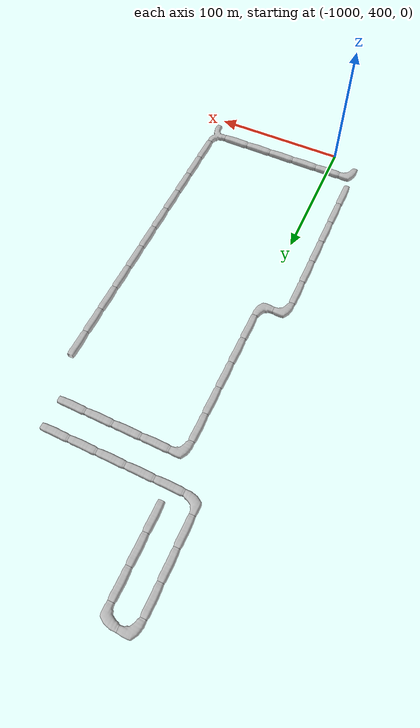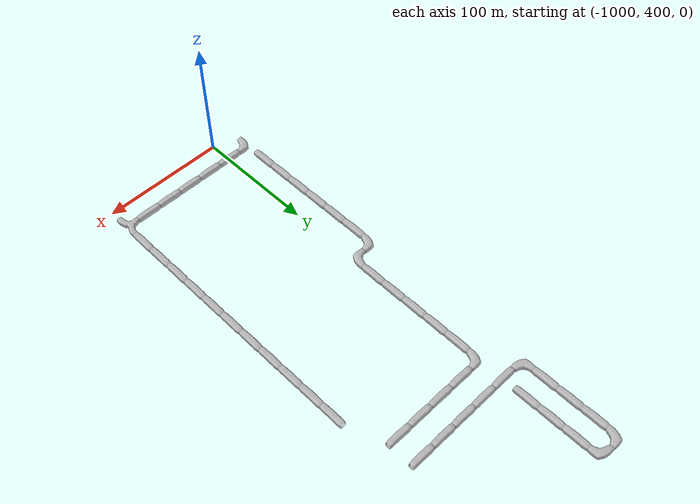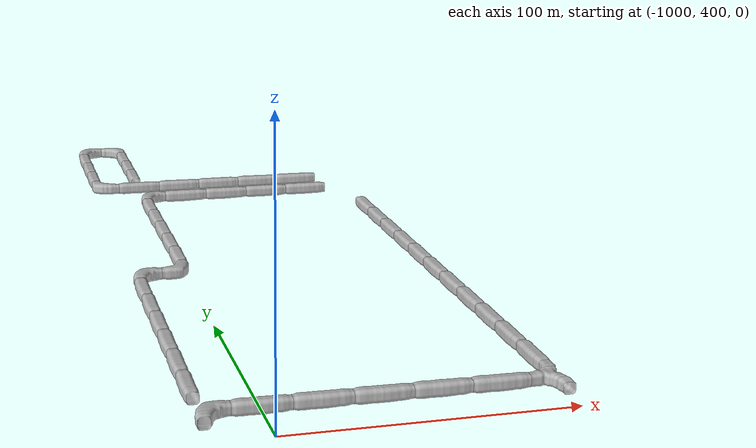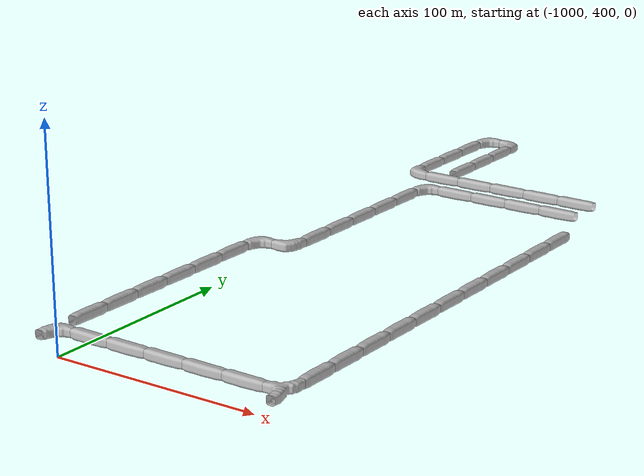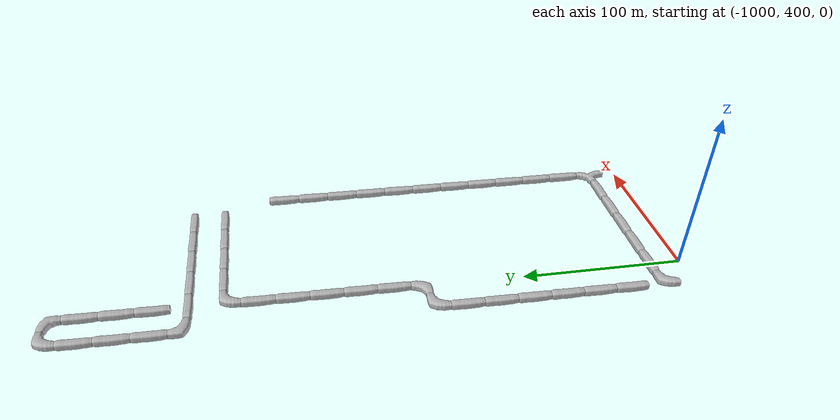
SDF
<sdf version="1.6">
 <world name="cave_16000_8">
  <include>
   <static>true</static>
   <name>cave_-45_32</name>
   <pose>-900 640 0 0 0 0.0</pose>
   <uri>model://cave_straight_20m</uri>
  </include>
  <include>
   <static>true</static>
   <name>cave_-45_31</name>
   <pose>-900 620 0 0 0 0.0</pose>
   <uri>model://cave_straight_20m</uri>
  </include>
  <include>
   <static>true</static>
   <name>cave_-45_30</name>
   <pose>-900 600 0 0 0 0.0</pose>
   <uri>model://cave_straight_20m</uri>
  </include>
  <include>
   <static>true</static>
   <name>cave_-45_29</name>
   <pose>-900 580 0 0 0 0.0</pose>
   <uri>model://cave_straight_20m</uri>
  </include>
  <include>
   <static>true</static>
   <name>cave_-45_28</name>
   <pose>-900 560 0 0 0 0.0</pose>
   <uri>model://cave_straight_20m</uri>
  </include>
  <include>
   <static>true</static>
   <name>cave_-45_27</name>
   <pose>-900 540 0 0 0 0.0</pose>
   <uri>model://cave_straight_20m</uri>
  </include>
  <include>
   <static>true</static>
   <name>cave_-45_26</name>
   <pose>-900 520 0 0 0 0.0</pose>
   <uri>model://cave_straight_20m</uri>
  </include>
  <include>
   <static>true</static>
   <name>cave_-45_25</name>
   <pose>-900 500 0 0 0 0.0</pose>
   <uri>model://cave_straight_20m</uri>
  </include>
  <include>
   <static>true</static>
   <name>cave_-45_24</name>
   <pose>-900 480 0 0 0 0.0</pose>
   <uri>model://cave_straight_20m</uri>
  </include>
  <include>
   <static>true</static>
   <name>cave_-45_23</name>
   <pose>-900 460 0 0 0 0.0</pose>
   <uri>model://cave_straight_20m</uri>
  </include>
  <include>
   <static>true</static>
   <name>cave_-45_22</name>
   <pose>-900 440 0 0 0 0.0</pose>
   <uri>model://cave_straight_20m</uri>
  </include>
  <include>
   <static>true</static>
   <name>cave_-45_21</name>
   <pose>-900 420 0 0 0 1.5707963267948966</pose>
   <uri>model://cave_3way_20m</uri>
  </include>
  <include>
   <static>true</static>
   <name>cave_-46_21</name>
   <pose>-920 420 0 0 0 1.5707963267948966</pose>
   <uri>model://cave_straight_20m</uri>
  </include>
  <include>
   <static>true</static>
   <name>cave_-47_21</name>
   <pose>-940 420 0 0 0 1.5707963267948966</pose>
   <uri>model://cave_straight_20m</uri>
  </include>
  <include>
   <static>true</static>
   <name>cave_-48_21</name>
   <pose>-960 420 0 0 0 1.5707963267948966</pose>
   <uri>model://cave_straight_20m</uri>
  </include>
  <include>
   <static>true</static>
   <name>cave_-49_21</name>
   <pose>-980 420 0 0 0 1.5707963267948966</pose>
   <uri>model://cave_straight_20m</uri>
  </include>
  <include>
   <static>true</static>
   <name>cave_-50_21</name>
   <pose>-1000 420 0 0 0 1.5707963267948966</pose>
   <uri>model://cave_straight_20m</uri>
  </include>
  <include>
   <static>true</static>
   <name>cave_-51_21</name>
   <pose>-1020 420 0 0 0 -1.5707963267948966</pose>
   <uri>model://cave_L_20m</uri>
  </include>
  <include>
   <static>true</static>
   <name>cave_-46_34</name>
   <pose>-920 680 0 0 0 1.5707963267948966</pose>
   <uri>model://cave_straight_20m</uri>
  </include>
  <include>
   <static>true</static>
   <name>cave_-47_34</name>
   <pose>-940 680 0 0 0 1.5707963267948966</pose>
   <uri>model://cave_straight_20m</uri>
  </include>
  <include>
   <static>true</static>
   <name>cave_-48_34</name>
   <pose>-960 680 0 0 0 1.5707963267948966</pose>
   <uri>model://cave_straight_20m</uri>
  </include>
  <include>
   <static>true</static>
   <name>cave_-49_34</name>
   <pose>-980 680 0 0 0 1.5707963267948966</pose>
   <uri>model://cave_straight_20m</uri>
  </include>
  <include>
   <static>true</static>
   <name>cave_-50_34</name>
   <pose>-1000 680 0 0 0 -1.5707963267948966</pose>
   <uri>model://cave_L_20m</uri>
  </include>
  <include>
   <static>true</static>
   <name>cave_-50_33</name>
   <pose>-1000 660 0 0 0 0.0</pose>
   <uri>model://cave_straight_20m</uri>
  </include>
  <include>
   <static>true</static>
   <name>cave_-50_32</name>
   <pose>-1000 640 0 0 0 0.0</pose>
   <uri>model://cave_straight_20m</uri>
  </include>
  <include>
   <static>true</static>
   <name>cave_-50_31</name>
   <pose>-1000 620 0 0 0 0.0</pose>
   <uri>model://cave_straight_20m</uri>
  </include>
  <include>
   <static>true</static>
   <name>cave_-50_30</name>
   <pose>-1000 600 0 0 0 0.0</pose>
   <uri>model://cave_straight_20m</uri>
  </include>
  <include>
   <static>true</static>
   <name>cave_-50_29</name>
   <pose>-1000 580 0 0 0 0.0</pose>
   <uri>model://cave_straight_20m</uri>
  </include>
  <include>
   <static>true</static>
   <name>cave_-50_28</name>
   <pose>-1000 560 0 0 0 1.5707963267948966</pose>
   <uri>model://cave_L_20m</uri>
  </include>
  <include>
   <static>true</static>
   <name>cave_-51_28</name>
   <pose>-1020 560 0 0 0 -1.5707963267948966</pose>
   <uri>model://cave_L_20m</uri>
  </include>
  <include>
   <static>true</static>
   <name>cave_-51_27</name>
   <pose>-1020 540 0 0 0 0.0</pose>
   <uri>model://cave_straight_20m</uri>
  </include>
  <include>
   <static>true</static>
   <name>cave_-51_26</name>
   <pose>-1020 520 0 0 0 0.0</pose>
   <uri>model://cave_straight_20m</uri>
  </include>
  <include>
   <static>true</static>
   <name>cave_-51_25</name>
   <pose>-1020 500 0 0 0 0.0</pose>
   <uri>model://cave_straight_20m</uri>
  </include>
  <include>
   <static>true</static>
   <name>cave_-51_24</name>
   <pose>-1020 480 0 0 0 0.0</pose>
   <uri>model://cave_straight_20m</uri>
  </include>
  <include>
   <static>true</static>
   <name>cave_-51_23</name>
   <pose>-1020 460 0 0 0 0.0</pose>
   <uri>model://cave_straight_20m</uri>
  </include>
  <include>
   <static>true</static>
   <name>cave_-51_22</name>
   <pose>-1020 440 0 0 0 0.0</pose>
   <uri>model://cave_straight_20m</uri>
  </include>
  <include>
   <static>true</static>
   <name>cave_-46_35</name>
   <pose>-920 700 0 0 0 1.5707963267948966</pose>
   <uri>model://cave_straight_20m</uri>
  </include>
  <include>
   <static>true</static>
   <name>cave_-47_35</name>
   <pose>-940 700 0 0 0 1.5707963267948966</pose>
   <uri>model://cave_straight_20m</uri>
  </include>
  <include>
   <static>true</static>
   <name>cave_-48_35</name>
   <pose>-960 700 0 0 0 1.5707963267948966</pose>
   <uri>model://cave_straight_20m</uri>
  </include>
  <include>
   <static>true</static>
   <name>cave_-49_35</name>
   <pose>-980 700 0 0 0 1.5707963267948966</pose>
   <uri>model://cave_straight_20m</uri>
  </include>
  <include>
   <static>true</static>
   <name>cave_-50_35</name>
   <pose>-1000 700 0 0 0 1.5707963267948966</pose>
   <uri>model://cave_straight_20m</uri>
  </include>
  <include>
   <static>true</static>
   <name>cave_-51_35</name>
   <pose>-1020 700 0 0 0 0.0</pose>
   <uri>model://cave_L_20m</uri>
  </include>
  <include>
   <static>true</static>
   <name>cave_-51_36</name>
   <pose>-1020 720 0 0 0 0.0</pose>
   <uri>model://cave_straight_20m</uri>
  </include>
  <include>
   <static>true</static>
   <name>cave_-51_37</name>
   <pose>-1020 740 0 0 0 0.0</pose>
   <uri>model://cave_straight_20m</uri>
  </include>
  <include>
   <static>true</static>
   <name>cave_-51_38</name>
   <pose>-1020 760 0 0 0 0.0</pose>
   <uri>model://cave_straight_20m</uri>
  </include>
  <include>
   <static>true</static>
   <name>cave_-51_39</name>
   <pose>-1020 780 0 0 0 -1.5707963267948966</pose>
   <uri>model://cave_L_20m</uri>
  </include>
  <include>
   <static>true</static>
   <name>cave_-50_39</name>
   <pose>-1000 780 0 0 0 3.141592653589793</pose>
   <uri>model://cave_L_20m</uri>
  </include>
  <include>
   <static>true</static>
   <name>cave_-50_38</name>
   <pose>-1000 760 0 0 0 0.0</pose>
   <uri>model://cave_straight_20m</uri>
  </include>
  <include>
   <static>true</static>
   <name>cave_-50_37</name>
   <pose>-1000 740 0 0 0 0.0</pose>
   <uri>model://cave_straight_20m</uri>
  </include>
  <include>
   <static>true</static>
   <name>cave_-50_36</name>
   <pose>-1000 720 0 0 0 0.0</pose>
   <uri>model://cave_straight_20m</uri>
  </include>
 </world>
</sdf>
